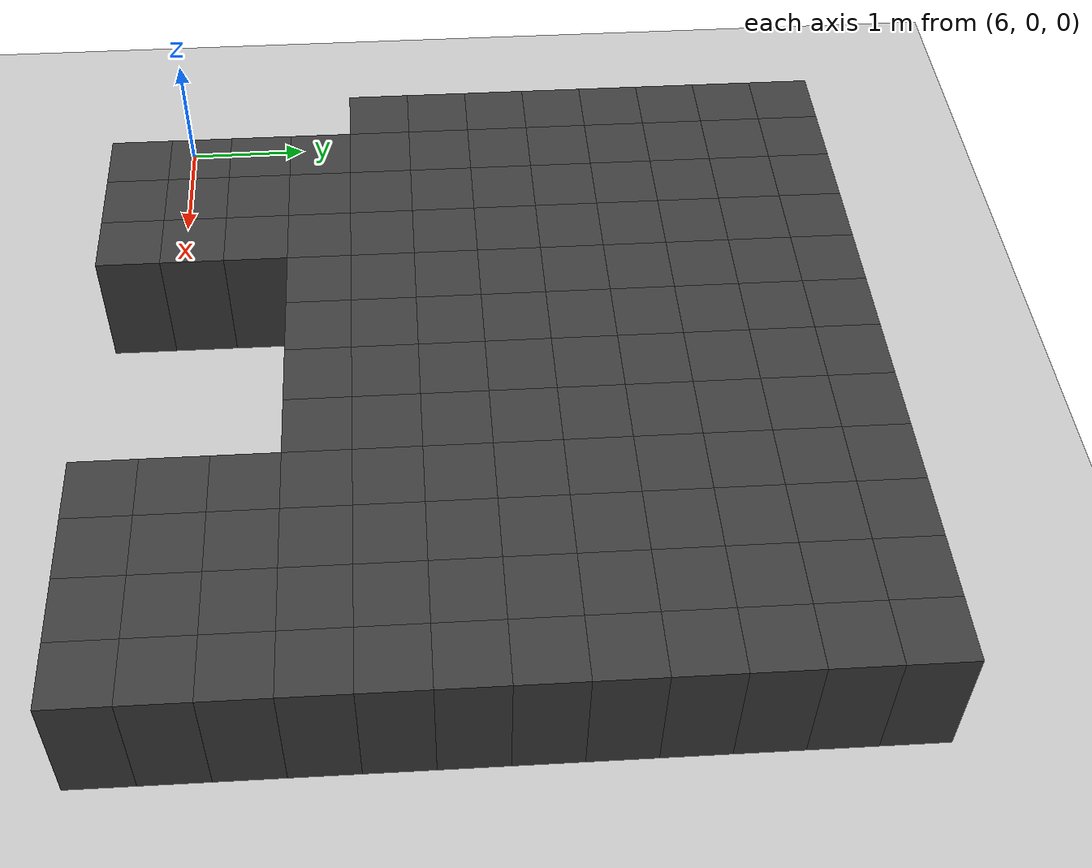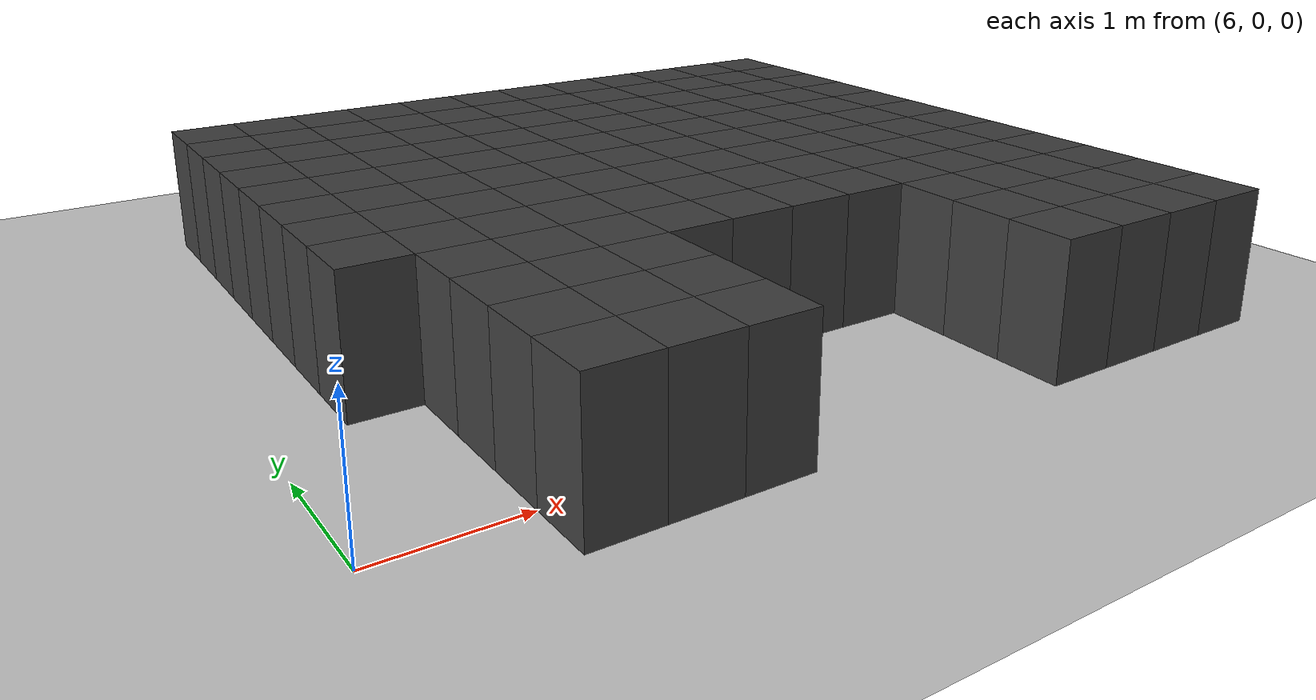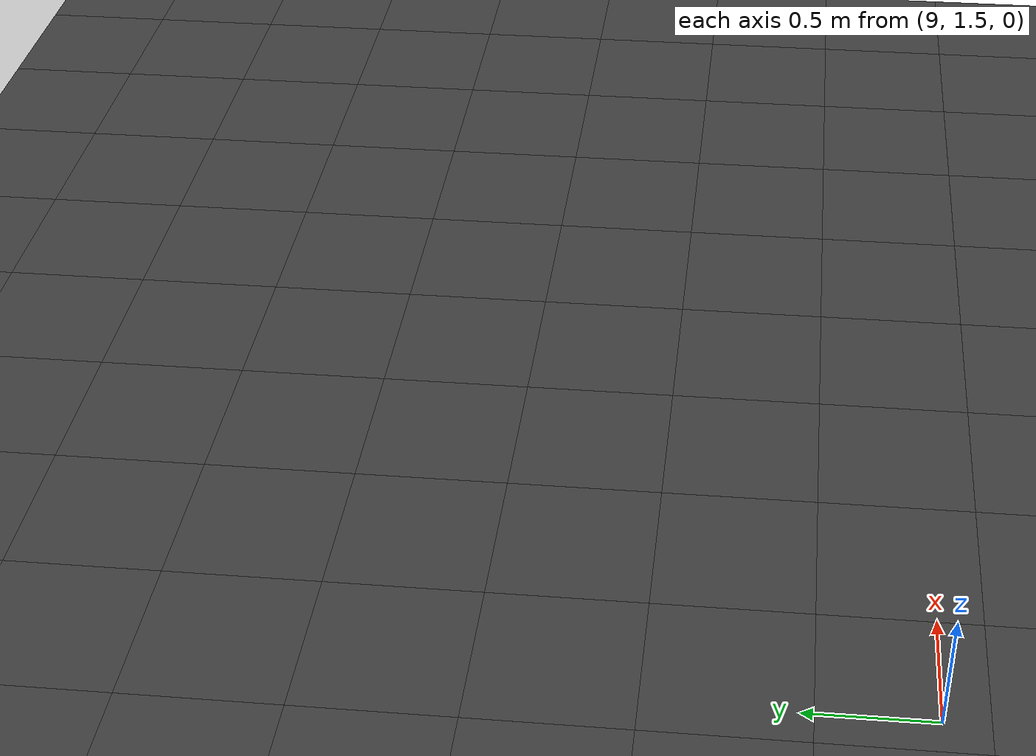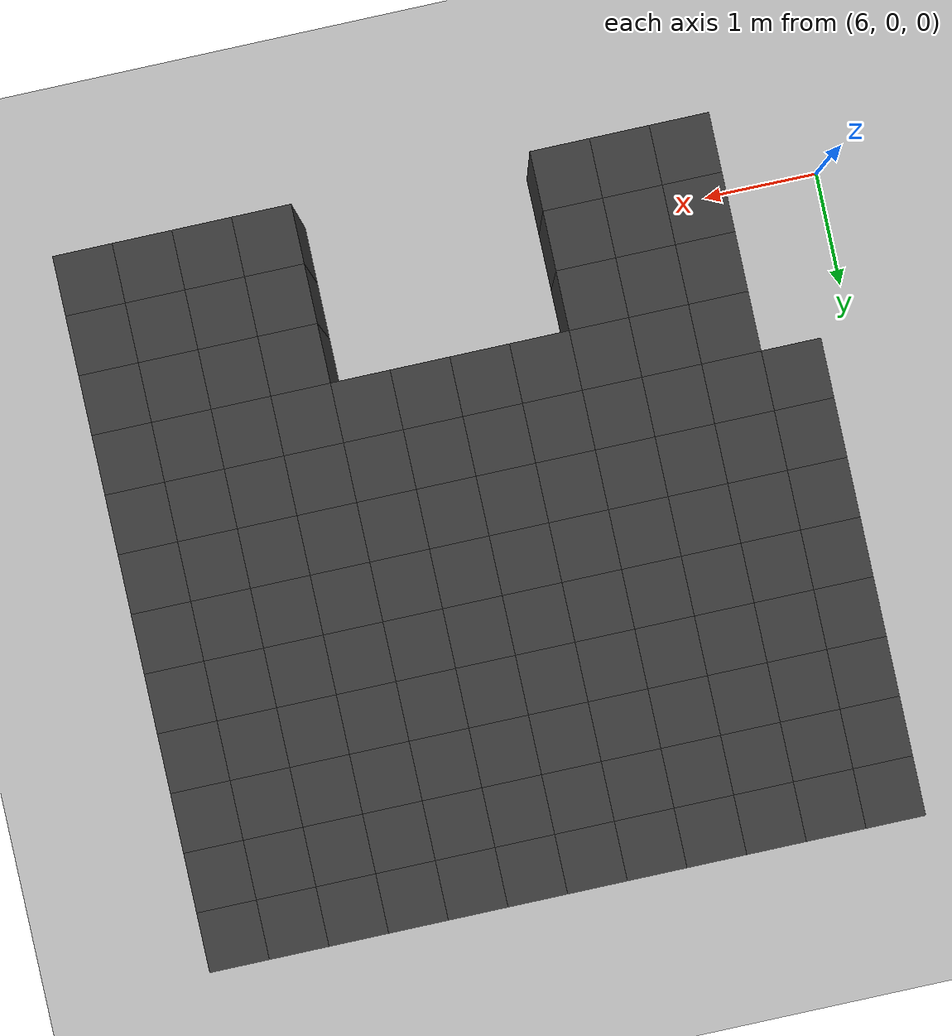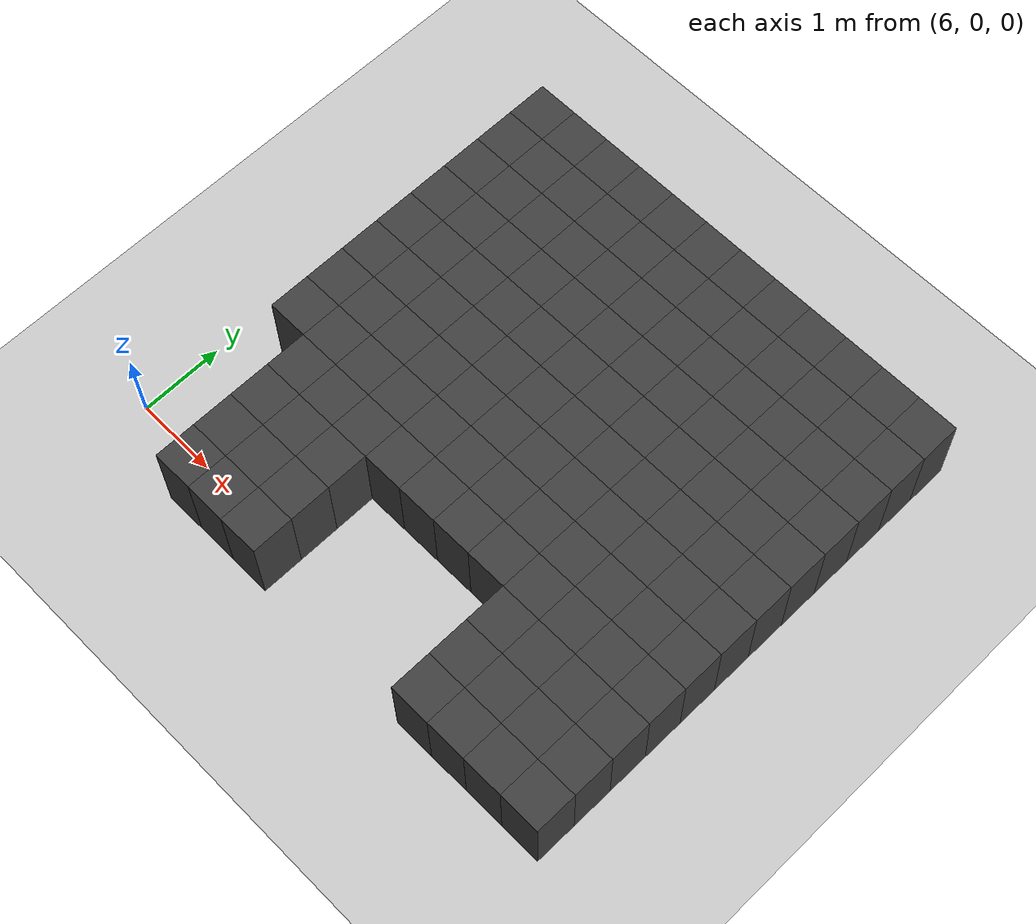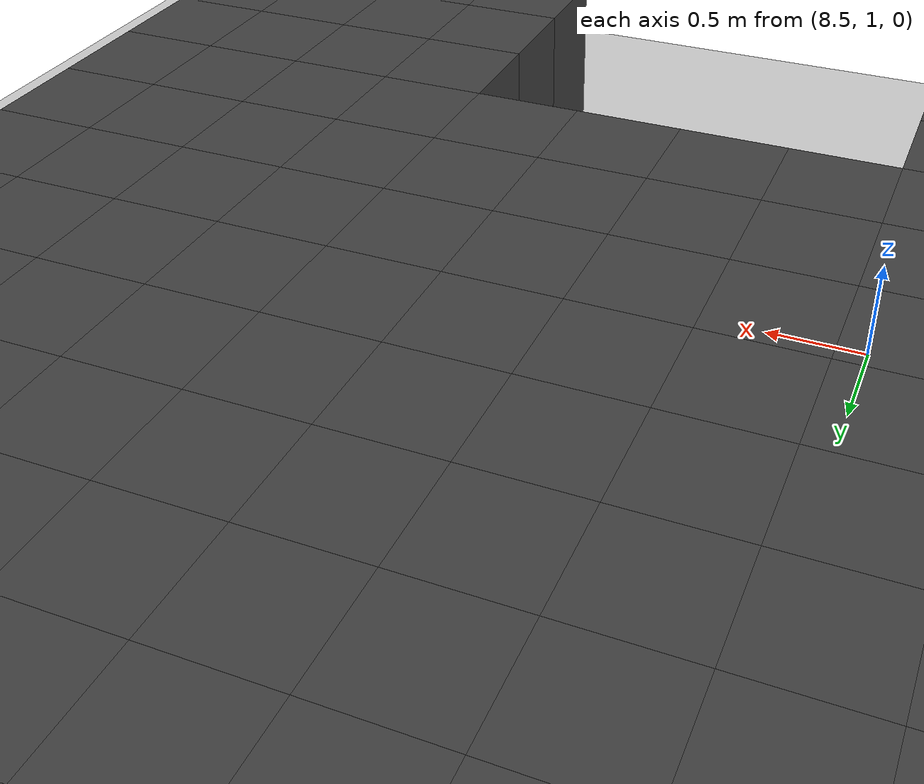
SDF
<sdf version="1.7">
 <world name="map_14494">
  <model name="ground_plane">
   <static>true</static>
   <link name="link">
    <collision name="collision">
     <geometry><plane><normal>0 0 1</normal><size>200 200</size></plane></geometry>
    </collision>
    <visual name="visual">
     <geometry><plane><normal>0 0 1</normal><size>200 200</size></plane></geometry>
     <material><ambient>0.8 0.8 0.8 1</ambient><diffuse>0.8 0.8 0.8 1</diffuse></material>
    </visual>
   </link>
  </model>
  <model name="maze_environment">
   <static>true</static>
   <link name="wall_529">
    <pose>6.750 5.250 0.500 0 0 0</pose>
    <collision name="col"><geometry><box><size>0.5 0.5 1.0</size></box></geometry></collision>
    <visual name="vis">
     <geometry><box><size>0.5 0.5 1.0</size></box></geometry>
     <material><ambient>0.15 0.15 0.15 1</ambient><diffuse>0.25 0.25 0.25 1</diffuse></material>
    </visual>
   </link>
   <link name="wall_530">
    <pose>7.250 5.250 0.500 0 0 0</pose>
    <collision name="col"><geometry><box><size>0.5 0.5 1.0</size></box></geometry></collision>
    <visual name="vis">
     <geometry><box><size>0.5 0.5 1.0</size></box></geometry>
     <material><ambient>0.15 0.15 0.15 1</ambient><diffuse>0.25 0.25 0.25 1</diffuse></material>
    </visual>
   </link>
   <link name="wall_531">
    <pose>7.750 5.250 0.500 0 0 0</pose>
    <collision name="col"><geometry><box><size>0.5 0.5 1.0</size></box></geometry></collision>
    <visual name="vis">
     <geometry><box><size>0.5 0.5 1.0</size></box></geometry>
     <material><ambient>0.15 0.15 0.15 1</ambient><diffuse>0.25 0.25 0.25 1</diffuse></material>
    </visual>
   </link>
   <link name="wall_532">
    <pose>8.250 5.250 0.500 0 0 0</pose>
    <collision name="col"><geometry><box><size>0.5 0.5 1.0</size></box></geometry></collision>
    <visual name="vis">
     <geometry><box><size>0.5 0.5 1.0</size></box></geometry>
     <material><ambient>0.15 0.15 0.15 1</ambient><diffuse>0.25 0.25 0.25 1</diffuse></material>
    </visual>
   </link>
   <link name="wall_533">
    <pose>8.750 5.250 0.500 0 0 0</pose>
    <collision name="col"><geometry><box><size>0.5 0.5 1.0</size></box></geometry></collision>
    <visual name="vis">
     <geometry><box><size>0.5 0.5 1.0</size></box></geometry>
     <material><ambient>0.15 0.15 0.15 1</ambient><diffuse>0.25 0.25 0.25 1</diffuse></material>
    </visual>
   </link>
   <link name="wall_534">
    <pose>9.250 5.250 0.500 0 0 0</pose>
    <collision name="col"><geometry><box><size>0.5 0.5 1.0</size></box></geometry></collision>
    <visual name="vis">
     <geometry><box><size>0.5 0.5 1.0</size></box></geometry>
     <material><ambient>0.15 0.15 0.15 1</ambient><diffuse>0.25 0.25 0.25 1</diffuse></material>
    </visual>
   </link>
   <link name="wall_535">
    <pose>9.750 5.250 0.500 0 0 0</pose>
    <collision name="col"><geometry><box><size>0.5 0.5 1.0</size></box></geometry></collision>
    <visual name="vis">
     <geometry><box><size>0.5 0.5 1.0</size></box></geometry>
     <material><ambient>0.15 0.15 0.15 1</ambient><diffuse>0.25 0.25 0.25 1</diffuse></material>
    </visual>
   </link>
   <link name="wall_536">
    <pose>10.250 5.250 0.500 0 0 0</pose>
    <collision name="col"><geometry><box><size>0.5 0.5 1.0</size></box></geometry></collision>
    <visual name="vis">
     <geometry><box><size>0.5 0.5 1.0</size></box></geometry>
     <material><ambient>0.15 0.15 0.15 1</ambient><diffuse>0.25 0.25 0.25 1</diffuse></material>
    </visual>
   </link>
   <link name="wall_537">
    <pose>10.750 5.250 0.500 0 0 0</pose>
    <collision name="col"><geometry><box><size>0.5 0.5 1.0</size></box></geometry></collision>
    <visual name="vis">
     <geometry><box><size>0.5 0.5 1.0</size></box></geometry>
     <material><ambient>0.15 0.15 0.15 1</ambient><diffuse>0.25 0.25 0.25 1</diffuse></material>
    </visual>
   </link>
   <link name="wall_538">
    <pose>11.250 5.250 0.500 0 0 0</pose>
    <collision name="col"><geometry><box><size>0.5 0.5 1.0</size></box></geometry></collision>
    <visual name="vis">
     <geometry><box><size>0.5 0.5 1.0</size></box></geometry>
     <material><ambient>0.15 0.15 0.15 1</ambient><diffuse>0.25 0.25 0.25 1</diffuse></material>
    </visual>
   </link>
   <link name="wall_539">
    <pose>11.750 5.250 0.500 0 0 0</pose>
    <collision name="col"><geometry><box><size>0.5 0.5 1.0</size></box></geometry></collision>
    <visual name="vis">
     <geometry><box><size>0.5 0.5 1.0</size></box></geometry>
     <material><ambient>0.15 0.15 0.15 1</ambient><diffuse>0.25 0.25 0.25 1</diffuse></material>
    </visual>
   </link>
   <link name="wall_540">
    <pose>12.250 5.250 0.500 0 0 0</pose>
    <collision name="col"><geometry><box><size>0.5 0.5 1.0</size></box></geometry></collision>
    <visual name="vis">
     <geometry><box><size>0.5 0.5 1.0</size></box></geometry>
     <material><ambient>0.15 0.15 0.15 1</ambient><diffuse>0.25 0.25 0.25 1</diffuse></material>
    </visual>
   </link>
   <link name="wall_562">
    <pose>6.750 4.750 0.500 0 0 0</pose>
    <collision name="col"><geometry><box><size>0.5 0.5 1.0</size></box></geometry></collision>
    <visual name="vis">
     <geometry><box><size>0.5 0.5 1.0</size></box></geometry>
     <material><ambient>0.15 0.15 0.15 1</ambient><diffuse>0.25 0.25 0.25 1</diffuse></material>
    </visual>
   </link>
   <link name="wall_563">
    <pose>7.250 4.750 0.500 0 0 0</pose>
    <collision name="col"><geometry><box><size>0.5 0.5 1.0</size></box></geometry></collision>
    <visual name="vis">
     <geometry><box><size>0.5 0.5 1.0</size></box></geometry>
     <material><ambient>0.15 0.15 0.15 1</ambient><diffuse>0.25 0.25 0.25 1</diffuse></material>
    </visual>
   </link>
   <link name="wall_564">
    <pose>7.750 4.750 0.500 0 0 0</pose>
    <collision name="col"><geometry><box><size>0.5 0.5 1.0</size></box></geometry></collision>
    <visual name="vis">
     <geometry><box><size>0.5 0.5 1.0</size></box></geometry>
     <material><ambient>0.15 0.15 0.15 1</ambient><diffuse>0.25 0.25 0.25 1</diffuse></material>
    </visual>
   </link>
   <link name="wall_565">
    <pose>8.250 4.750 0.500 0 0 0</pose>
    <collision name="col"><geometry><box><size>0.5 0.5 1.0</size></box></geometry></collision>
    <visual name="vis">
     <geometry><box><size>0.5 0.5 1.0</size></box></geometry>
     <material><ambient>0.15 0.15 0.15 1</ambient><diffuse>0.25 0.25 0.25 1</diffuse></material>
    </visual>
   </link>
   <link name="wall_566">
    <pose>8.750 4.750 0.500 0 0 0</pose>
    <collision name="col"><geometry><box><size>0.5 0.5 1.0</size></box></geometry></collision>
    <visual name="vis">
     <geometry><box><size>0.5 0.5 1.0</size></box></geometry>
     <material><ambient>0.15 0.15 0.15 1</ambient><diffuse>0.25 0.25 0.25 1</diffuse></material>
    </visual>
   </link>
   <link name="wall_567">
    <pose>9.250 4.750 0.500 0 0 0</pose>
    <collision name="col"><geometry><box><size>0.5 0.5 1.0</size></box></geometry></collision>
    <visual name="vis">
     <geometry><box><size>0.5 0.5 1.0</size></box></geometry>
     <material><ambient>0.15 0.15 0.15 1</ambient><diffuse>0.25 0.25 0.25 1</diffuse></material>
    </visual>
   </link>
   <link name="wall_568">
    <pose>9.750 4.750 0.500 0 0 0</pose>
    <collision name="col"><geometry><box><size>0.5 0.5 1.0</size></box></geometry></collision>
    <visual name="vis">
     <geometry><box><size>0.5 0.5 1.0</size></box></geometry>
     <material><ambient>0.15 0.15 0.15 1</ambient><diffuse>0.25 0.25 0.25 1</diffuse></material>
    </visual>
   </link>
   <link name="wall_569">
    <pose>10.250 4.750 0.500 0 0 0</pose>
    <collision name="col"><geometry><box><size>0.5 0.5 1.0</size></box></geometry></collision>
    <visual name="vis">
     <geometry><box><size>0.5 0.5 1.0</size></box></geometry>
     <material><ambient>0.15 0.15 0.15 1</ambient><diffuse>0.25 0.25 0.25 1</diffuse></material>
    </visual>
   </link>
   <link name="wall_570">
    <pose>10.750 4.750 0.500 0 0 0</pose>
    <collision name="col"><geometry><box><size>0.5 0.5 1.0</size></box></geometry></collision>
    <visual name="vis">
     <geometry><box><size>0.5 0.5 1.0</size></box></geometry>
     <material><ambient>0.15 0.15 0.15 1</ambient><diffuse>0.25 0.25 0.25 1</diffuse></material>
    </visual>
   </link>
   <link name="wall_571">
    <pose>11.250 4.750 0.500 0 0 0</pose>
    <collision name="col"><geometry><box><size>0.5 0.5 1.0</size></box></geometry></collision>
    <visual name="vis">
     <geometry><box><size>0.5 0.5 1.0</size></box></geometry>
     <material><ambient>0.15 0.15 0.15 1</ambient><diffuse>0.25 0.25 0.25 1</diffuse></material>
    </visual>
   </link>
   <link name="wall_572">
    <pose>11.750 4.750 0.500 0 0 0</pose>
    <collision name="col"><geometry><box><size>0.5 0.5 1.0</size></box></geometry></collision>
    <visual name="vis">
     <geometry><box><size>0.5 0.5 1.0</size></box></geometry>
     <material><ambient>0.15 0.15 0.15 1</ambient><diffuse>0.25 0.25 0.25 1</diffuse></material>
    </visual>
   </link>
   <link name="wall_573">
    <pose>12.250 4.750 0.500 0 0 0</pose>
    <collision name="col"><geometry><box><size>0.5 0.5 1.0</size></box></geometry></collision>
    <visual name="vis">
     <geometry><box><size>0.5 0.5 1.0</size></box></geometry>
     <material><ambient>0.15 0.15 0.15 1</ambient><diffuse>0.25 0.25 0.25 1</diffuse></material>
    </visual>
   </link>
   <link name="wall_595">
    <pose>6.750 4.250 0.500 0 0 0</pose>
    <collision name="col"><geometry><box><size>0.5 0.5 1.0</size></box></geometry></collision>
    <visual name="vis">
     <geometry><box><size>0.5 0.5 1.0</size></box></geometry>
     <material><ambient>0.15 0.15 0.15 1</ambient><diffuse>0.25 0.25 0.25 1</diffuse></material>
    </visual>
   </link>
   <link name="wall_596">
    <pose>7.250 4.250 0.500 0 0 0</pose>
    <collision name="col"><geometry><box><size>0.5 0.5 1.0</size></box></geometry></collision>
    <visual name="vis">
     <geometry><box><size>0.5 0.5 1.0</size></box></geometry>
     <material><ambient>0.15 0.15 0.15 1</ambient><diffuse>0.25 0.25 0.25 1</diffuse></material>
    </visual>
   </link>
   <link name="wall_597">
    <pose>7.750 4.250 0.500 0 0 0</pose>
    <collision name="col"><geometry><box><size>0.5 0.5 1.0</size></box></geometry></collision>
    <visual name="vis">
     <geometry><box><size>0.5 0.5 1.0</size></box></geometry>
     <material><ambient>0.15 0.15 0.15 1</ambient><diffuse>0.25 0.25 0.25 1</diffuse></material>
    </visual>
   </link>
   <link name="wall_598">
    <pose>8.250 4.250 0.500 0 0 0</pose>
    <collision name="col"><geometry><box><size>0.5 0.5 1.0</size></box></geometry></collision>
    <visual name="vis">
     <geometry><box><size>0.5 0.5 1.0</size></box></geometry>
     <material><ambient>0.15 0.15 0.15 1</ambient><diffuse>0.25 0.25 0.25 1</diffuse></material>
    </visual>
   </link>
   <link name="wall_599">
    <pose>8.750 4.250 0.500 0 0 0</pose>
    <collision name="col"><geometry><box><size>0.5 0.5 1.0</size></box></geometry></collision>
    <visual name="vis">
     <geometry><box><size>0.5 0.5 1.0</size></box></geometry>
     <material><ambient>0.15 0.15 0.15 1</ambient><diffuse>0.25 0.25 0.25 1</diffuse></material>
    </visual>
   </link>
   <link name="wall_600">
    <pose>9.250 4.250 0.500 0 0 0</pose>
    <collision name="col"><geometry><box><size>0.5 0.5 1.0</size></box></geometry></collision>
    <visual name="vis">
     <geometry><box><size>0.5 0.5 1.0</size></box></geometry>
     <material><ambient>0.15 0.15 0.15 1</ambient><diffuse>0.25 0.25 0.25 1</diffuse></material>
    </visual>
   </link>
   <link name="wall_601">
    <pose>9.750 4.250 0.500 0 0 0</pose>
    <collision name="col"><geometry><box><size>0.5 0.5 1.0</size></box></geometry></collision>
    <visual name="vis">
     <geometry><box><size>0.5 0.5 1.0</size></box></geometry>
     <material><ambient>0.15 0.15 0.15 1</ambient><diffuse>0.25 0.25 0.25 1</diffuse></material>
    </visual>
   </link>
   <link name="wall_602">
    <pose>10.250 4.250 0.500 0 0 0</pose>
    <collision name="col"><geometry><box><size>0.5 0.5 1.0</size></box></geometry></collision>
    <visual name="vis">
     <geometry><box><size>0.5 0.5 1.0</size></box></geometry>
     <material><ambient>0.15 0.15 0.15 1</ambient><diffuse>0.25 0.25 0.25 1</diffuse></material>
    </visual>
   </link>
   <link name="wall_603">
    <pose>10.750 4.250 0.500 0 0 0</pose>
    <collision name="col"><geometry><box><size>0.5 0.5 1.0</size></box></geometry></collision>
    <visual name="vis">
     <geometry><box><size>0.5 0.5 1.0</size></box></geometry>
     <material><ambient>0.15 0.15 0.15 1</ambient><diffuse>0.25 0.25 0.25 1</diffuse></material>
    </visual>
   </link>
   <link name="wall_604">
    <pose>11.250 4.250 0.500 0 0 0</pose>
    <collision name="col"><geometry><box><size>0.5 0.5 1.0</size></box></geometry></collision>
    <visual name="vis">
     <geometry><box><size>0.5 0.5 1.0</size></box></geometry>
     <material><ambient>0.15 0.15 0.15 1</ambient><diffuse>0.25 0.25 0.25 1</diffuse></material>
    </visual>
   </link>
   <link name="wall_605">
    <pose>11.750 4.250 0.500 0 0 0</pose>
    <collision name="col"><geometry><box><size>0.5 0.5 1.0</size></box></geometry></collision>
    <visual name="vis">
     <geometry><box><size>0.5 0.5 1.0</size></box></geometry>
     <material><ambient>0.15 0.15 0.15 1</ambient><diffuse>0.25 0.25 0.25 1</diffuse></material>
    </visual>
   </link>
   <link name="wall_606">
    <pose>12.250 4.250 0.500 0 0 0</pose>
    <collision name="col"><geometry><box><size>0.5 0.5 1.0</size></box></geometry></collision>
    <visual name="vis">
     <geometry><box><size>0.5 0.5 1.0</size></box></geometry>
     <material><ambient>0.15 0.15 0.15 1</ambient><diffuse>0.25 0.25 0.25 1</diffuse></material>
    </visual>
   </link>
   <link name="wall_628">
    <pose>6.750 3.750 0.500 0 0 0</pose>
    <collision name="col"><geometry><box><size>0.5 0.5 1.0</size></box></geometry></collision>
    <visual name="vis">
     <geometry><box><size>0.5 0.5 1.0</size></box></geometry>
     <material><ambient>0.15 0.15 0.15 1</ambient><diffuse>0.25 0.25 0.25 1</diffuse></material>
    </visual>
   </link>
   <link name="wall_629">
    <pose>7.250 3.750 0.500 0 0 0</pose>
    <collision name="col"><geometry><box><size>0.5 0.5 1.0</size></box></geometry></collision>
    <visual name="vis">
     <geometry><box><size>0.5 0.5 1.0</size></box></geometry>
     <material><ambient>0.15 0.15 0.15 1</ambient><diffuse>0.25 0.25 0.25 1</diffuse></material>
    </visual>
   </link>
   <link name="wall_630">
    <pose>7.750 3.750 0.500 0 0 0</pose>
    <collision name="col"><geometry><box><size>0.5 0.5 1.0</size></box></geometry></collision>
    <visual name="vis">
     <geometry><box><size>0.5 0.5 1.0</size></box></geometry>
     <material><ambient>0.15 0.15 0.15 1</ambient><diffuse>0.25 0.25 0.25 1</diffuse></material>
    </visual>
   </link>
   <link name="wall_631">
    <pose>8.250 3.750 0.500 0 0 0</pose>
    <collision name="col"><geometry><box><size>0.5 0.5 1.0</size></box></geometry></collision>
    <visual name="vis">
     <geometry><box><size>0.5 0.5 1.0</size></box></geometry>
     <material><ambient>0.15 0.15 0.15 1</ambient><diffuse>0.25 0.25 0.25 1</diffuse></material>
    </visual>
   </link>
   <link name="wall_632">
    <pose>8.750 3.750 0.500 0 0 0</pose>
    <collision name="col"><geometry><box><size>0.5 0.5 1.0</size></box></geometry></collision>
    <visual name="vis">
     <geometry><box><size>0.5 0.5 1.0</size></box></geometry>
     <material><ambient>0.15 0.15 0.15 1</ambient><diffuse>0.25 0.25 0.25 1</diffuse></material>
    </visual>
   </link>
   <link name="wall_633">
    <pose>9.250 3.750 0.500 0 0 0</pose>
    <collision name="col"><geometry><box><size>0.5 0.5 1.0</size></box></geometry></collision>
    <visual name="vis">
     <geometry><box><size>0.5 0.5 1.0</size></box></geometry>
     <material><ambient>0.15 0.15 0.15 1</ambient><diffuse>0.25 0.25 0.25 1</diffuse></material>
    </visual>
   </link>
   <link name="wall_634">
    <pose>9.750 3.750 0.500 0 0 0</pose>
    <collision name="col"><geometry><box><size>0.5 0.5 1.0</size></box></geometry></collision>
    <visual name="vis">
     <geometry><box><size>0.5 0.5 1.0</size></box></geometry>
     <material><ambient>0.15 0.15 0.15 1</ambient><diffuse>0.25 0.25 0.25 1</diffuse></material>
    </visual>
   </link>
   <link name="wall_635">
    <pose>10.250 3.750 0.500 0 0 0</pose>
    <collision name="col"><geometry><box><size>0.5 0.5 1.0</size></box></geometry></collision>
    <visual name="vis">
     <geometry><box><size>0.5 0.5 1.0</size></box></geometry>
     <material><ambient>0.15 0.15 0.15 1</ambient><diffuse>0.25 0.25 0.25 1</diffuse></material>
    </visual>
   </link>
   <link name="wall_636">
    <pose>10.750 3.750 0.500 0 0 0</pose>
    <collision name="col"><geometry><box><size>0.5 0.5 1.0</size></box></geometry></collision>
    <visual name="vis">
     <geometry><box><size>0.5 0.5 1.0</size></box></geometry>
     <material><ambient>0.15 0.15 0.15 1</ambient><diffuse>0.25 0.25 0.25 1</diffuse></material>
    </visual>
   </link>
   <link name="wall_637">
    <pose>11.250 3.750 0.500 0 0 0</pose>
    <collision name="col"><geometry><box><size>0.5 0.5 1.0</size></box></geometry></collision>
    <visual name="vis">
     <geometry><box><size>0.5 0.5 1.0</size></box></geometry>
     <material><ambient>0.15 0.15 0.15 1</ambient><diffuse>0.25 0.25 0.25 1</diffuse></material>
    </visual>
   </link>
   <link name="wall_638">
    <pose>11.750 3.750 0.500 0 0 0</pose>
    <collision name="col"><geometry><box><size>0.5 0.5 1.0</size></box></geometry></collision>
    <visual name="vis">
     <geometry><box><size>0.5 0.5 1.0</size></box></geometry>
     <material><ambient>0.15 0.15 0.15 1</ambient><diffuse>0.25 0.25 0.25 1</diffuse></material>
    </visual>
   </link>
   <link name="wall_639">
    <pose>12.250 3.750 0.500 0 0 0</pose>
    <collision name="col"><geometry><box><size>0.5 0.5 1.0</size></box></geometry></collision>
    <visual name="vis">
     <geometry><box><size>0.5 0.5 1.0</size></box></geometry>
     <material><ambient>0.15 0.15 0.15 1</ambient><diffuse>0.25 0.25 0.25 1</diffuse></material>
    </visual>
   </link>
   <link name="wall_662">
    <pose>6.750 3.250 0.500 0 0 0</pose>
    <collision name="col"><geometry><box><size>0.5 0.5 1.0</size></box></geometry></collision>
    <visual name="vis">
     <geometry><box><size>0.5 0.5 1.0</size></box></geometry>
     <material><ambient>0.15 0.15 0.15 1</ambient><diffuse>0.25 0.25 0.25 1</diffuse></material>
    </visual>
   </link>
   <link name="wall_663">
    <pose>7.250 3.250 0.500 0 0 0</pose>
    <collision name="col"><geometry><box><size>0.5 0.5 1.0</size></box></geometry></collision>
    <visual name="vis">
     <geometry><box><size>0.5 0.5 1.0</size></box></geometry>
     <material><ambient>0.15 0.15 0.15 1</ambient><diffuse>0.25 0.25 0.25 1</diffuse></material>
    </visual>
   </link>
   <link name="wall_664">
    <pose>7.750 3.250 0.500 0 0 0</pose>
    <collision name="col"><geometry><box><size>0.5 0.5 1.0</size></box></geometry></collision>
    <visual name="vis">
     <geometry><box><size>0.5 0.5 1.0</size></box></geometry>
     <material><ambient>0.15 0.15 0.15 1</ambient><diffuse>0.25 0.25 0.25 1</diffuse></material>
    </visual>
   </link>
   <link name="wall_665">
    <pose>8.250 3.250 0.500 0 0 0</pose>
    <collision name="col"><geometry><box><size>0.5 0.5 1.0</size></box></geometry></collision>
    <visual name="vis">
     <geometry><box><size>0.5 0.5 1.0</size></box></geometry>
     <material><ambient>0.15 0.15 0.15 1</ambient><diffuse>0.25 0.25 0.25 1</diffuse></material>
    </visual>
   </link>
   <link name="wall_666">
    <pose>8.750 3.250 0.500 0 0 0</pose>
    <collision name="col"><geometry><box><size>0.5 0.5 1.0</size></box></geometry></collision>
    <visual name="vis">
     <geometry><box><size>0.5 0.5 1.0</size></box></geometry>
     <material><ambient>0.15 0.15 0.15 1</ambient><diffuse>0.25 0.25 0.25 1</diffuse></material>
    </visual>
   </link>
   <link name="wall_667">
    <pose>9.250 3.250 0.500 0 0 0</pose>
    <collision name="col"><geometry><box><size>0.5 0.5 1.0</size></box></geometry></collision>
    <visual name="vis">
     <geometry><box><size>0.5 0.5 1.0</size></box></geometry>
     <material><ambient>0.15 0.15 0.15 1</ambient><diffuse>0.25 0.25 0.25 1</diffuse></material>
    </visual>
   </link>
   <link name="wall_668">
    <pose>9.750 3.250 0.500 0 0 0</pose>
    <collision name="col"><geometry><box><size>0.5 0.5 1.0</size></box></geometry></collision>
    <visual name="vis">
     <geometry><box><size>0.5 0.5 1.0</size></box></geometry>
     <material><ambient>0.15 0.15 0.15 1</ambient><diffuse>0.25 0.25 0.25 1</diffuse></material>
    </visual>
   </link>
   <link name="wall_669">
    <pose>10.250 3.250 0.500 0 0 0</pose>
    <collision name="col"><geometry><box><size>0.5 0.5 1.0</size></box></geometry></collision>
    <visual name="vis">
     <geometry><box><size>0.5 0.5 1.0</size></box></geometry>
     <material><ambient>0.15 0.15 0.15 1</ambient><diffuse>0.25 0.25 0.25 1</diffuse></material>
    </visual>
   </link>
   <link name="wall_670">
    <pose>10.750 3.250 0.500 0 0 0</pose>
    <collision name="col"><geometry><box><size>0.5 0.5 1.0</size></box></geometry></collision>
    <visual name="vis">
     <geometry><box><size>0.5 0.5 1.0</size></box></geometry>
     <material><ambient>0.15 0.15 0.15 1</ambient><diffuse>0.25 0.25 0.25 1</diffuse></material>
    </visual>
   </link>
   <link name="wall_671">
    <pose>11.250 3.250 0.500 0 0 0</pose>
    <collision name="col"><geometry><box><size>0.5 0.5 1.0</size></box></geometry></collision>
    <visual name="vis">
     <geometry><box><size>0.5 0.5 1.0</size></box></geometry>
     <material><ambient>0.15 0.15 0.15 1</ambient><diffuse>0.25 0.25 0.25 1</diffuse></material>
    </visual>
   </link>
   <link name="wall_672">
    <pose>11.750 3.250 0.500 0 0 0</pose>
    <collision name="col"><geometry><box><size>0.5 0.5 1.0</size></box></geometry></collision>
    <visual name="vis">
     <geometry><box><size>0.5 0.5 1.0</size></box></geometry>
     <material><ambient>0.15 0.15 0.15 1</ambient><diffuse>0.25 0.25 0.25 1</diffuse></material>
    </visual>
   </link>
   <link name="wall_673">
    <pose>12.250 3.250 0.500 0 0 0</pose>
    <collision name="col"><geometry><box><size>0.5 0.5 1.0</size></box></geometry></collision>
    <visual name="vis">
     <geometry><box><size>0.5 0.5 1.0</size></box></geometry>
     <material><ambient>0.15 0.15 0.15 1</ambient><diffuse>0.25 0.25 0.25 1</diffuse></material>
    </visual>
   </link>
   <link name="wall_697">
    <pose>6.750 2.750 0.500 0 0 0</pose>
    <collision name="col"><geometry><box><size>0.5 0.5 1.0</size></box></geometry></collision>
    <visual name="vis">
     <geometry><box><size>0.5 0.5 1.0</size></box></geometry>
     <material><ambient>0.15 0.15 0.15 1</ambient><diffuse>0.25 0.25 0.25 1</diffuse></material>
    </visual>
   </link>
   <link name="wall_698">
    <pose>7.250 2.750 0.500 0 0 0</pose>
    <collision name="col"><geometry><box><size>0.5 0.5 1.0</size></box></geometry></collision>
    <visual name="vis">
     <geometry><box><size>0.5 0.5 1.0</size></box></geometry>
     <material><ambient>0.15 0.15 0.15 1</ambient><diffuse>0.25 0.25 0.25 1</diffuse></material>
    </visual>
   </link>
   <link name="wall_699">
    <pose>7.750 2.750 0.500 0 0 0</pose>
    <collision name="col"><geometry><box><size>0.5 0.5 1.0</size></box></geometry></collision>
    <visual name="vis">
     <geometry><box><size>0.5 0.5 1.0</size></box></geometry>
     <material><ambient>0.15 0.15 0.15 1</ambient><diffuse>0.25 0.25 0.25 1</diffuse></material>
    </visual>
   </link>
   <link name="wall_700">
    <pose>8.250 2.750 0.500 0 0 0</pose>
    <collision name="col"><geometry><box><size>0.5 0.5 1.0</size></box></geometry></collision>
    <visual name="vis">
     <geometry><box><size>0.5 0.5 1.0</size></box></geometry>
     <material><ambient>0.15 0.15 0.15 1</ambient><diffuse>0.25 0.25 0.25 1</diffuse></material>
    </visual>
   </link>
   <link name="wall_701">
    <pose>8.750 2.750 0.500 0 0 0</pose>
    <collision name="col"><geometry><box><size>0.5 0.5 1.0</size></box></geometry></collision>
    <visual name="vis">
     <geometry><box><size>0.5 0.5 1.0</size></box></geometry>
     <material><ambient>0.15 0.15 0.15 1</ambient><diffuse>0.25 0.25 0.25 1</diffuse></material>
    </visual>
   </link>
   <link name="wall_702">
    <pose>9.250 2.750 0.500 0 0 0</pose>
    <collision name="col"><geometry><box><size>0.5 0.5 1.0</size></box></geometry></collision>
    <visual name="vis">
     <geometry><box><size>0.5 0.5 1.0</size></box></geometry>
     <material><ambient>0.15 0.15 0.15 1</ambient><diffuse>0.25 0.25 0.25 1</diffuse></material>
    </visual>
   </link>
   <link name="wall_703">
    <pose>9.750 2.750 0.500 0 0 0</pose>
    <collision name="col"><geometry><box><size>0.5 0.5 1.0</size></box></geometry></collision>
    <visual name="vis">
     <geometry><box><size>0.5 0.5 1.0</size></box></geometry>
     <material><ambient>0.15 0.15 0.15 1</ambient><diffuse>0.25 0.25 0.25 1</diffuse></material>
    </visual>
   </link>
   <link name="wall_704">
    <pose>10.250 2.750 0.500 0 0 0</pose>
    <collision name="col"><geometry><box><size>0.5 0.5 1.0</size></box></geometry></collision>
    <visual name="vis">
     <geometry><box><size>0.5 0.5 1.0</size></box></geometry>
     <material><ambient>0.15 0.15 0.15 1</ambient><diffuse>0.25 0.25 0.25 1</diffuse></material>
    </visual>
   </link>
   <link name="wall_705">
    <pose>10.750 2.750 0.500 0 0 0</pose>
    <collision name="col"><geometry><box><size>0.5 0.5 1.0</size></box></geometry></collision>
    <visual name="vis">
     <geometry><box><size>0.5 0.5 1.0</size></box></geometry>
     <material><ambient>0.15 0.15 0.15 1</ambient><diffuse>0.25 0.25 0.25 1</diffuse></material>
    </visual>
   </link>
   <link name="wall_706">
    <pose>11.250 2.750 0.500 0 0 0</pose>
    <collision name="col"><geometry><box><size>0.5 0.5 1.0</size></box></geometry></collision>
    <visual name="vis">
     <geometry><box><size>0.5 0.5 1.0</size></box></geometry>
     <material><ambient>0.15 0.15 0.15 1</ambient><diffuse>0.25 0.25 0.25 1</diffuse></material>
    </visual>
   </link>
   <link name="wall_707">
    <pose>11.750 2.750 0.500 0 0 0</pose>
    <collision name="col"><geometry><box><size>0.5 0.5 1.0</size></box></geometry></collision>
    <visual name="vis">
     <geometry><box><size>0.5 0.5 1.0</size></box></geometry>
     <material><ambient>0.15 0.15 0.15 1</ambient><diffuse>0.25 0.25 0.25 1</diffuse></material>
    </visual>
   </link>
   <link name="wall_708">
    <pose>12.250 2.750 0.500 0 0 0</pose>
    <collision name="col"><geometry><box><size>0.5 0.5 1.0</size></box></geometry></collision>
    <visual name="vis">
     <geometry><box><size>0.5 0.5 1.0</size></box></geometry>
     <material><ambient>0.15 0.15 0.15 1</ambient><diffuse>0.25 0.25 0.25 1</diffuse></material>
    </visual>
   </link>
   <link name="wall_732">
    <pose>6.750 2.250 0.500 0 0 0</pose>
    <collision name="col"><geometry><box><size>0.5 0.5 1.0</size></box></geometry></collision>
    <visual name="vis">
     <geometry><box><size>0.5 0.5 1.0</size></box></geometry>
     <material><ambient>0.15 0.15 0.15 1</ambient><diffuse>0.25 0.25 0.25 1</diffuse></material>
    </visual>
   </link>
   <link name="wall_733">
    <pose>7.250 2.250 0.500 0 0 0</pose>
    <collision name="col"><geometry><box><size>0.5 0.5 1.0</size></box></geometry></collision>
    <visual name="vis">
     <geometry><box><size>0.5 0.5 1.0</size></box></geometry>
     <material><ambient>0.15 0.15 0.15 1</ambient><diffuse>0.25 0.25 0.25 1</diffuse></material>
    </visual>
   </link>
   <link name="wall_734">
    <pose>7.750 2.250 0.500 0 0 0</pose>
    <collision name="col"><geometry><box><size>0.5 0.5 1.0</size></box></geometry></collision>
    <visual name="vis">
     <geometry><box><size>0.5 0.5 1.0</size></box></geometry>
     <material><ambient>0.15 0.15 0.15 1</ambient><diffuse>0.25 0.25 0.25 1</diffuse></material>
    </visual>
   </link>
   <link name="wall_735">
    <pose>8.250 2.250 0.500 0 0 0</pose>
    <collision name="col"><geometry><box><size>0.5 0.5 1.0</size></box></geometry></collision>
    <visual name="vis">
     <geometry><box><size>0.5 0.5 1.0</size></box></geometry>
     <material><ambient>0.15 0.15 0.15 1</ambient><diffuse>0.25 0.25 0.25 1</diffuse></material>
    </visual>
   </link>
   <link name="wall_736">
    <pose>8.750 2.250 0.500 0 0 0</pose>
    <collision name="col"><geometry><box><size>0.5 0.5 1.0</size></box></geometry></collision>
    <visual name="vis">
     <geometry><box><size>0.5 0.5 1.0</size></box></geometry>
     <material><ambient>0.15 0.15 0.15 1</ambient><diffuse>0.25 0.25 0.25 1</diffuse></material>
    </visual>
   </link>
   <link name="wall_737">
    <pose>9.250 2.250 0.500 0 0 0</pose>
    <collision name="col"><geometry><box><size>0.5 0.5 1.0</size></box></geometry></collision>
    <visual name="vis">
     <geometry><box><size>0.5 0.5 1.0</size></box></geometry>
     <material><ambient>0.15 0.15 0.15 1</ambient><diffuse>0.25 0.25 0.25 1</diffuse></material>
    </visual>
   </link>
   <link name="wall_738">
    <pose>9.750 2.250 0.500 0 0 0</pose>
    <collision name="col"><geometry><box><size>0.5 0.5 1.0</size></box></geometry></collision>
    <visual name="vis">
     <geometry><box><size>0.5 0.5 1.0</size></box></geometry>
     <material><ambient>0.15 0.15 0.15 1</ambient><diffuse>0.25 0.25 0.25 1</diffuse></material>
    </visual>
   </link>
   <link name="wall_739">
    <pose>10.250 2.250 0.500 0 0 0</pose>
    <collision name="col"><geometry><box><size>0.5 0.5 1.0</size></box></geometry></collision>
    <visual name="vis">
     <geometry><box><size>0.5 0.5 1.0</size></box></geometry>
     <material><ambient>0.15 0.15 0.15 1</ambient><diffuse>0.25 0.25 0.25 1</diffuse></material>
    </visual>
   </link>
   <link name="wall_740">
    <pose>10.750 2.250 0.500 0 0 0</pose>
    <collision name="col"><geometry><box><size>0.5 0.5 1.0</size></box></geometry></collision>
    <visual name="vis">
     <geometry><box><size>0.5 0.5 1.0</size></box></geometry>
     <material><ambient>0.15 0.15 0.15 1</ambient><diffuse>0.25 0.25 0.25 1</diffuse></material>
    </visual>
   </link>
   <link name="wall_741">
    <pose>11.250 2.250 0.500 0 0 0</pose>
    <collision name="col"><geometry><box><size>0.5 0.5 1.0</size></box></geometry></collision>
    <visual name="vis">
     <geometry><box><size>0.5 0.5 1.0</size></box></geometry>
     <material><ambient>0.15 0.15 0.15 1</ambient><diffuse>0.25 0.25 0.25 1</diffuse></material>
    </visual>
   </link>
   <link name="wall_742">
    <pose>11.750 2.250 0.500 0 0 0</pose>
    <collision name="col"><geometry><box><size>0.5 0.5 1.0</size></box></geometry></collision>
    <visual name="vis">
     <geometry><box><size>0.5 0.5 1.0</size></box></geometry>
     <material><ambient>0.15 0.15 0.15 1</ambient><diffuse>0.25 0.25 0.25 1</diffuse></material>
    </visual>
   </link>
   <link name="wall_743">
    <pose>12.250 2.250 0.500 0 0 0</pose>
    <collision name="col"><geometry><box><size>0.5 0.5 1.0</size></box></geometry></collision>
    <visual name="vis">
     <geometry><box><size>0.5 0.5 1.0</size></box></geometry>
     <material><ambient>0.15 0.15 0.15 1</ambient><diffuse>0.25 0.25 0.25 1</diffuse></material>
    </visual>
   </link>
   <link name="wall_775">
    <pose>6.750 1.750 0.500 0 0 0</pose>
    <collision name="col"><geometry><box><size>0.5 0.5 1.0</size></box></geometry></collision>
    <visual name="vis">
     <geometry><box><size>0.5 0.5 1.0</size></box></geometry>
     <material><ambient>0.15 0.15 0.15 1</ambient><diffuse>0.25 0.25 0.25 1</diffuse></material>
    </visual>
   </link>
   <link name="wall_776">
    <pose>7.250 1.750 0.500 0 0 0</pose>
    <collision name="col"><geometry><box><size>0.5 0.5 1.0</size></box></geometry></collision>
    <visual name="vis">
     <geometry><box><size>0.5 0.5 1.0</size></box></geometry>
     <material><ambient>0.15 0.15 0.15 1</ambient><diffuse>0.25 0.25 0.25 1</diffuse></material>
    </visual>
   </link>
   <link name="wall_777">
    <pose>7.750 1.750 0.500 0 0 0</pose>
    <collision name="col"><geometry><box><size>0.5 0.5 1.0</size></box></geometry></collision>
    <visual name="vis">
     <geometry><box><size>0.5 0.5 1.0</size></box></geometry>
     <material><ambient>0.15 0.15 0.15 1</ambient><diffuse>0.25 0.25 0.25 1</diffuse></material>
    </visual>
   </link>
   <link name="wall_778">
    <pose>8.250 1.750 0.500 0 0 0</pose>
    <collision name="col"><geometry><box><size>0.5 0.5 1.0</size></box></geometry></collision>
    <visual name="vis">
     <geometry><box><size>0.5 0.5 1.0</size></box></geometry>
     <material><ambient>0.15 0.15 0.15 1</ambient><diffuse>0.25 0.25 0.25 1</diffuse></material>
    </visual>
   </link>
   <link name="wall_779">
    <pose>8.750 1.750 0.500 0 0 0</pose>
    <collision name="col"><geometry><box><size>0.5 0.5 1.0</size></box></geometry></collision>
    <visual name="vis">
     <geometry><box><size>0.5 0.5 1.0</size></box></geometry>
     <material><ambient>0.15 0.15 0.15 1</ambient><diffuse>0.25 0.25 0.25 1</diffuse></material>
    </visual>
   </link>
   <link name="wall_780">
    <pose>9.250 1.750 0.500 0 0 0</pose>
    <collision name="col"><geometry><box><size>0.5 0.5 1.0</size></box></geometry></collision>
    <visual name="vis">
     <geometry><box><size>0.5 0.5 1.0</size></box></geometry>
     <material><ambient>0.15 0.15 0.15 1</ambient><diffuse>0.25 0.25 0.25 1</diffuse></material>
    </visual>
   </link>
   <link name="wall_781">
    <pose>9.750 1.750 0.500 0 0 0</pose>
    <collision name="col"><geometry><box><size>0.5 0.5 1.0</size></box></geometry></collision>
    <visual name="vis">
     <geometry><box><size>0.5 0.5 1.0</size></box></geometry>
     <material><ambient>0.15 0.15 0.15 1</ambient><diffuse>0.25 0.25 0.25 1</diffuse></material>
    </visual>
   </link>
   <link name="wall_782">
    <pose>10.250 1.750 0.500 0 0 0</pose>
    <collision name="col"><geometry><box><size>0.5 0.5 1.0</size></box></geometry></collision>
    <visual name="vis">
     <geometry><box><size>0.5 0.5 1.0</size></box></geometry>
     <material><ambient>0.15 0.15 0.15 1</ambient><diffuse>0.25 0.25 0.25 1</diffuse></material>
    </visual>
   </link>
   <link name="wall_783">
    <pose>10.750 1.750 0.500 0 0 0</pose>
    <collision name="col"><geometry><box><size>0.5 0.5 1.0</size></box></geometry></collision>
    <visual name="vis">
     <geometry><box><size>0.5 0.5 1.0</size></box></geometry>
     <material><ambient>0.15 0.15 0.15 1</ambient><diffuse>0.25 0.25 0.25 1</diffuse></material>
    </visual>
   </link>
   <link name="wall_784">
    <pose>11.250 1.750 0.500 0 0 0</pose>
    <collision name="col"><geometry><box><size>0.5 0.5 1.0</size></box></geometry></collision>
    <visual name="vis">
     <geometry><box><size>0.5 0.5 1.0</size></box></geometry>
     <material><ambient>0.15 0.15 0.15 1</ambient><diffuse>0.25 0.25 0.25 1</diffuse></material>
    </visual>
   </link>
   <link name="wall_785">
    <pose>11.750 1.750 0.500 0 0 0</pose>
    <collision name="col"><geometry><box><size>0.5 0.5 1.0</size></box></geometry></collision>
    <visual name="vis">
     <geometry><box><size>0.5 0.5 1.0</size></box></geometry>
     <material><ambient>0.15 0.15 0.15 1</ambient><diffuse>0.25 0.25 0.25 1</diffuse></material>
    </visual>
   </link>
   <link name="wall_786">
    <pose>12.250 1.750 0.500 0 0 0</pose>
    <collision name="col"><geometry><box><size>0.5 0.5 1.0</size></box></geometry></collision>
    <visual name="vis">
     <geometry><box><size>0.5 0.5 1.0</size></box></geometry>
     <material><ambient>0.15 0.15 0.15 1</ambient><diffuse>0.25 0.25 0.25 1</diffuse></material>
    </visual>
   </link>
   <link name="wall_819">
    <pose>7.250 1.250 0.500 0 0 0</pose>
    <collision name="col"><geometry><box><size>0.5 0.5 1.0</size></box></geometry></collision>
    <visual name="vis">
     <geometry><box><size>0.5 0.5 1.0</size></box></geometry>
     <material><ambient>0.15 0.15 0.15 1</ambient><diffuse>0.25 0.25 0.25 1</diffuse></material>
    </visual>
   </link>
   <link name="wall_820">
    <pose>7.750 1.250 0.500 0 0 0</pose>
    <collision name="col"><geometry><box><size>0.5 0.5 1.0</size></box></geometry></collision>
    <visual name="vis">
     <geometry><box><size>0.5 0.5 1.0</size></box></geometry>
     <material><ambient>0.15 0.15 0.15 1</ambient><diffuse>0.25 0.25 0.25 1</diffuse></material>
    </visual>
   </link>
   <link name="wall_821">
    <pose>8.250 1.250 0.500 0 0 0</pose>
    <collision name="col"><geometry><box><size>0.5 0.5 1.0</size></box></geometry></collision>
    <visual name="vis">
     <geometry><box><size>0.5 0.5 1.0</size></box></geometry>
     <material><ambient>0.15 0.15 0.15 1</ambient><diffuse>0.25 0.25 0.25 1</diffuse></material>
    </visual>
   </link>
   <link name="wall_822">
    <pose>8.750 1.250 0.500 0 0 0</pose>
    <collision name="col"><geometry><box><size>0.5 0.5 1.0</size></box></geometry></collision>
    <visual name="vis">
     <geometry><box><size>0.5 0.5 1.0</size></box></geometry>
     <material><ambient>0.15 0.15 0.15 1</ambient><diffuse>0.25 0.25 0.25 1</diffuse></material>
    </visual>
   </link>
   <link name="wall_823">
    <pose>9.250 1.250 0.500 0 0 0</pose>
    <collision name="col"><geometry><box><size>0.5 0.5 1.0</size></box></geometry></collision>
    <visual name="vis">
     <geometry><box><size>0.5 0.5 1.0</size></box></geometry>
     <material><ambient>0.15 0.15 0.15 1</ambient><diffuse>0.25 0.25 0.25 1</diffuse></material>
    </visual>
   </link>
   <link name="wall_824">
    <pose>9.750 1.250 0.500 0 0 0</pose>
    <collision name="col"><geometry><box><size>0.5 0.5 1.0</size></box></geometry></collision>
    <visual name="vis">
     <geometry><box><size>0.5 0.5 1.0</size></box></geometry>
     <material><ambient>0.15 0.15 0.15 1</ambient><diffuse>0.25 0.25 0.25 1</diffuse></material>
    </visual>
   </link>
   <link name="wall_825">
    <pose>10.250 1.250 0.500 0 0 0</pose>
    <collision name="col"><geometry><box><size>0.5 0.5 1.0</size></box></geometry></collision>
    <visual name="vis">
     <geometry><box><size>0.5 0.5 1.0</size></box></geometry>
     <material><ambient>0.15 0.15 0.15 1</ambient><diffuse>0.25 0.25 0.25 1</diffuse></material>
    </visual>
   </link>
   <link name="wall_826">
    <pose>10.750 1.250 0.500 0 0 0</pose>
    <collision name="col"><geometry><box><size>0.5 0.5 1.0</size></box></geometry></collision>
    <visual name="vis">
     <geometry><box><size>0.5 0.5 1.0</size></box></geometry>
     <material><ambient>0.15 0.15 0.15 1</ambient><diffuse>0.25 0.25 0.25 1</diffuse></material>
    </visual>
   </link>
   <link name="wall_827">
    <pose>11.250 1.250 0.500 0 0 0</pose>
    <collision name="col"><geometry><box><size>0.5 0.5 1.0</size></box></geometry></collision>
    <visual name="vis">
     <geometry><box><size>0.5 0.5 1.0</size></box></geometry>
     <material><ambient>0.15 0.15 0.15 1</ambient><diffuse>0.25 0.25 0.25 1</diffuse></material>
    </visual>
   </link>
   <link name="wall_828">
    <pose>11.750 1.250 0.500 0 0 0</pose>
    <collision name="col"><geometry><box><size>0.5 0.5 1.0</size></box></geometry></collision>
    <visual name="vis">
     <geometry><box><size>0.5 0.5 1.0</size></box></geometry>
     <material><ambient>0.15 0.15 0.15 1</ambient><diffuse>0.25 0.25 0.25 1</diffuse></material>
    </visual>
   </link>
   <link name="wall_829">
    <pose>12.250 1.250 0.500 0 0 0</pose>
    <collision name="col"><geometry><box><size>0.5 0.5 1.0</size></box></geometry></collision>
    <visual name="vis">
     <geometry><box><size>0.5 0.5 1.0</size></box></geometry>
     <material><ambient>0.15 0.15 0.15 1</ambient><diffuse>0.25 0.25 0.25 1</diffuse></material>
    </visual>
   </link>
   <link name="wall_862">
    <pose>7.250 0.750 0.500 0 0 0</pose>
    <collision name="col"><geometry><box><size>0.5 0.5 1.0</size></box></geometry></collision>
    <visual name="vis">
     <geometry><box><size>0.5 0.5 1.0</size></box></geometry>
     <material><ambient>0.15 0.15 0.15 1</ambient><diffuse>0.25 0.25 0.25 1</diffuse></material>
    </visual>
   </link>
   <link name="wall_863">
    <pose>7.750 0.750 0.500 0 0 0</pose>
    <collision name="col"><geometry><box><size>0.5 0.5 1.0</size></box></geometry></collision>
    <visual name="vis">
     <geometry><box><size>0.5 0.5 1.0</size></box></geometry>
     <material><ambient>0.15 0.15 0.15 1</ambient><diffuse>0.25 0.25 0.25 1</diffuse></material>
    </visual>
   </link>
   <link name="wall_864">
    <pose>8.250 0.750 0.500 0 0 0</pose>
    <collision name="col"><geometry><box><size>0.5 0.5 1.0</size></box></geometry></collision>
    <visual name="vis">
     <geometry><box><size>0.5 0.5 1.0</size></box></geometry>
     <material><ambient>0.15 0.15 0.15 1</ambient><diffuse>0.25 0.25 0.25 1</diffuse></material>
    </visual>
   </link>
   <link name="wall_865">
    <pose>10.750 0.750 0.500 0 0 0</pose>
    <collision name="col"><geometry><box><size>0.5 0.5 1.0</size></box></geometry></collision>
    <visual name="vis">
     <geometry><box><size>0.5 0.5 1.0</size></box></geometry>
     <material><ambient>0.15 0.15 0.15 1</ambient><diffuse>0.25 0.25 0.25 1</diffuse></material>
    </visual>
   </link>
   <link name="wall_866">
    <pose>11.250 0.750 0.500 0 0 0</pose>
    <collision name="col"><geometry><box><size>0.5 0.5 1.0</size></box></geometry></collision>
    <visual name="vis">
     <geometry><box><size>0.5 0.5 1.0</size></box></geometry>
     <material><ambient>0.15 0.15 0.15 1</ambient><diffuse>0.25 0.25 0.25 1</diffuse></material>
    </visual>
   </link>
   <link name="wall_867">
    <pose>11.750 0.750 0.500 0 0 0</pose>
    <collision name="col"><geometry><box><size>0.5 0.5 1.0</size></box></geometry></collision>
    <visual name="vis">
     <geometry><box><size>0.5 0.5 1.0</size></box></geometry>
     <material><ambient>0.15 0.15 0.15 1</ambient><diffuse>0.25 0.25 0.25 1</diffuse></material>
    </visual>
   </link>
   <link name="wall_868">
    <pose>12.250 0.750 0.500 0 0 0</pose>
    <collision name="col"><geometry><box><size>0.5 0.5 1.0</size></box></geometry></collision>
    <visual name="vis">
     <geometry><box><size>0.5 0.5 1.0</size></box></geometry>
     <material><ambient>0.15 0.15 0.15 1</ambient><diffuse>0.25 0.25 0.25 1</diffuse></material>
    </visual>
   </link>
   <link name="wall_901">
    <pose>7.250 0.250 0.500 0 0 0</pose>
    <collision name="col"><geometry><box><size>0.5 0.5 1.0</size></box></geometry></collision>
    <visual name="vis">
     <geometry><box><size>0.5 0.5 1.0</size></box></geometry>
     <material><ambient>0.15 0.15 0.15 1</ambient><diffuse>0.25 0.25 0.25 1</diffuse></material>
    </visual>
   </link>
   <link name="wall_902">
    <pose>7.750 0.250 0.500 0 0 0</pose>
    <collision name="col"><geometry><box><size>0.5 0.5 1.0</size></box></geometry></collision>
    <visual name="vis">
     <geometry><box><size>0.5 0.5 1.0</size></box></geometry>
     <material><ambient>0.15 0.15 0.15 1</ambient><diffuse>0.25 0.25 0.25 1</diffuse></material>
    </visual>
   </link>
   <link name="wall_903">
    <pose>8.250 0.250 0.500 0 0 0</pose>
    <collision name="col"><geometry><box><size>0.5 0.5 1.0</size></box></geometry></collision>
    <visual name="vis">
     <geometry><box><size>0.5 0.5 1.0</size></box></geometry>
     <material><ambient>0.15 0.15 0.15 1</ambient><diffuse>0.25 0.25 0.25 1</diffuse></material>
    </visual>
   </link>
   <link name="wall_904">
    <pose>10.750 0.250 0.500 0 0 0</pose>
    <collision name="col"><geometry><box><size>0.5 0.5 1.0</size></box></geometry></collision>
    <visual name="vis">
     <geometry><box><size>0.5 0.5 1.0</size></box></geometry>
     <material><ambient>0.15 0.15 0.15 1</ambient><diffuse>0.25 0.25 0.25 1</diffuse></material>
    </visual>
   </link>
   <link name="wall_905">
    <pose>11.250 0.250 0.500 0 0 0</pose>
    <collision name="col"><geometry><box><size>0.5 0.5 1.0</size></box></geometry></collision>
    <visual name="vis">
     <geometry><box><size>0.5 0.5 1.0</size></box></geometry>
     <material><ambient>0.15 0.15 0.15 1</ambient><diffuse>0.25 0.25 0.25 1</diffuse></material>
    </visual>
   </link>
   <link name="wall_906">
    <pose>11.750 0.250 0.500 0 0 0</pose>
    <collision name="col"><geometry><box><size>0.5 0.5 1.0</size></box></geometry></collision>
    <visual name="vis">
     <geometry><box><size>0.5 0.5 1.0</size></box></geometry>
     <material><ambient>0.15 0.15 0.15 1</ambient><diffuse>0.25 0.25 0.25 1</diffuse></material>
    </visual>
   </link>
   <link name="wall_907">
    <pose>12.250 0.250 0.500 0 0 0</pose>
    <collision name="col"><geometry><box><size>0.5 0.5 1.0</size></box></geometry></collision>
    <visual name="vis">
     <geometry><box><size>0.5 0.5 1.0</size></box></geometry>
     <material><ambient>0.15 0.15 0.15 1</ambient><diffuse>0.25 0.25 0.25 1</diffuse></material>
    </visual>
   </link>
   <link name="wall_942">
    <pose>7.250 -0.250 0.500 0 0 0</pose>
    <collision name="col"><geometry><box><size>0.5 0.5 1.0</size></box></geometry></collision>
    <visual name="vis">
     <geometry><box><size>0.5 0.5 1.0</size></box></geometry>
     <material><ambient>0.15 0.15 0.15 1</ambient><diffuse>0.25 0.25 0.25 1</diffuse></material>
    </visual>
   </link>
   <link name="wall_943">
    <pose>7.750 -0.250 0.500 0 0 0</pose>
    <collision name="col"><geometry><box><size>0.5 0.5 1.0</size></box></geometry></collision>
    <visual name="vis">
     <geometry><box><size>0.5 0.5 1.0</size></box></geometry>
     <material><ambient>0.15 0.15 0.15 1</ambient><diffuse>0.25 0.25 0.25 1</diffuse></material>
    </visual>
   </link>
   <link name="wall_944">
    <pose>8.250 -0.250 0.500 0 0 0</pose>
    <collision name="col"><geometry><box><size>0.5 0.5 1.0</size></box></geometry></collision>
    <visual name="vis">
     <geometry><box><size>0.5 0.5 1.0</size></box></geometry>
     <material><ambient>0.15 0.15 0.15 1</ambient><diffuse>0.25 0.25 0.25 1</diffuse></material>
    </visual>
   </link>
   <link name="wall_945">
    <pose>10.750 -0.250 0.500 0 0 0</pose>
    <collision name="col"><geometry><box><size>0.5 0.5 1.0</size></box></geometry></collision>
    <visual name="vis">
     <geometry><box><size>0.5 0.5 1.0</size></box></geometry>
     <material><ambient>0.15 0.15 0.15 1</ambient><diffuse>0.25 0.25 0.25 1</diffuse></material>
    </visual>
   </link>
   <link name="wall_946">
    <pose>11.250 -0.250 0.500 0 0 0</pose>
    <collision name="col"><geometry><box><size>0.5 0.5 1.0</size></box></geometry></collision>
    <visual name="vis">
     <geometry><box><size>0.5 0.5 1.0</size></box></geometry>
     <material><ambient>0.15 0.15 0.15 1</ambient><diffuse>0.25 0.25 0.25 1</diffuse></material>
    </visual>
   </link>
   <link name="wall_947">
    <pose>11.750 -0.250 0.500 0 0 0</pose>
    <collision name="col"><geometry><box><size>0.5 0.5 1.0</size></box></geometry></collision>
    <visual name="vis">
     <geometry><box><size>0.5 0.5 1.0</size></box></geometry>
     <material><ambient>0.15 0.15 0.15 1</ambient><diffuse>0.25 0.25 0.25 1</diffuse></material>
    </visual>
   </link>
   <link name="wall_948">
    <pose>12.250 -0.250 0.500 0 0 0</pose>
    <collision name="col"><geometry><box><size>0.5 0.5 1.0</size></box></geometry></collision>
    <visual name="vis">
     <geometry><box><size>0.5 0.5 1.0</size></box></geometry>
     <material><ambient>0.15 0.15 0.15 1</ambient><diffuse>0.25 0.25 0.25 1</diffuse></material>
    </visual>
   </link>
  </model>
 </world>
</sdf>
